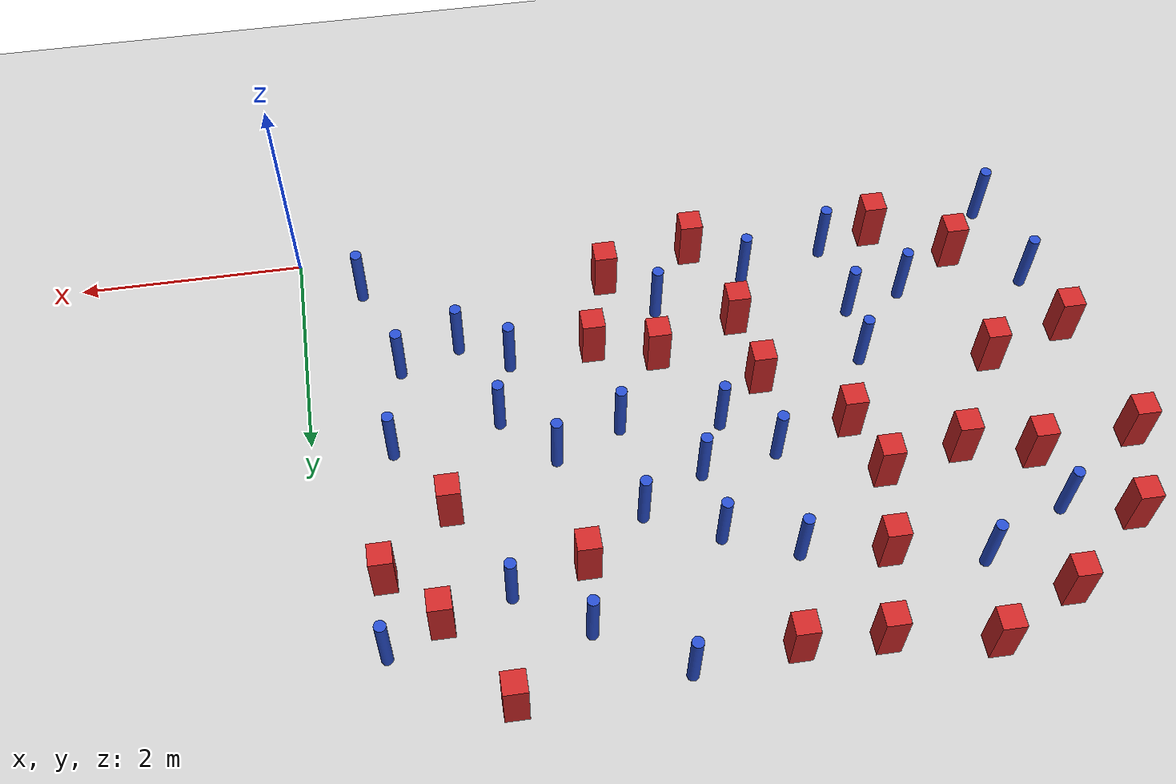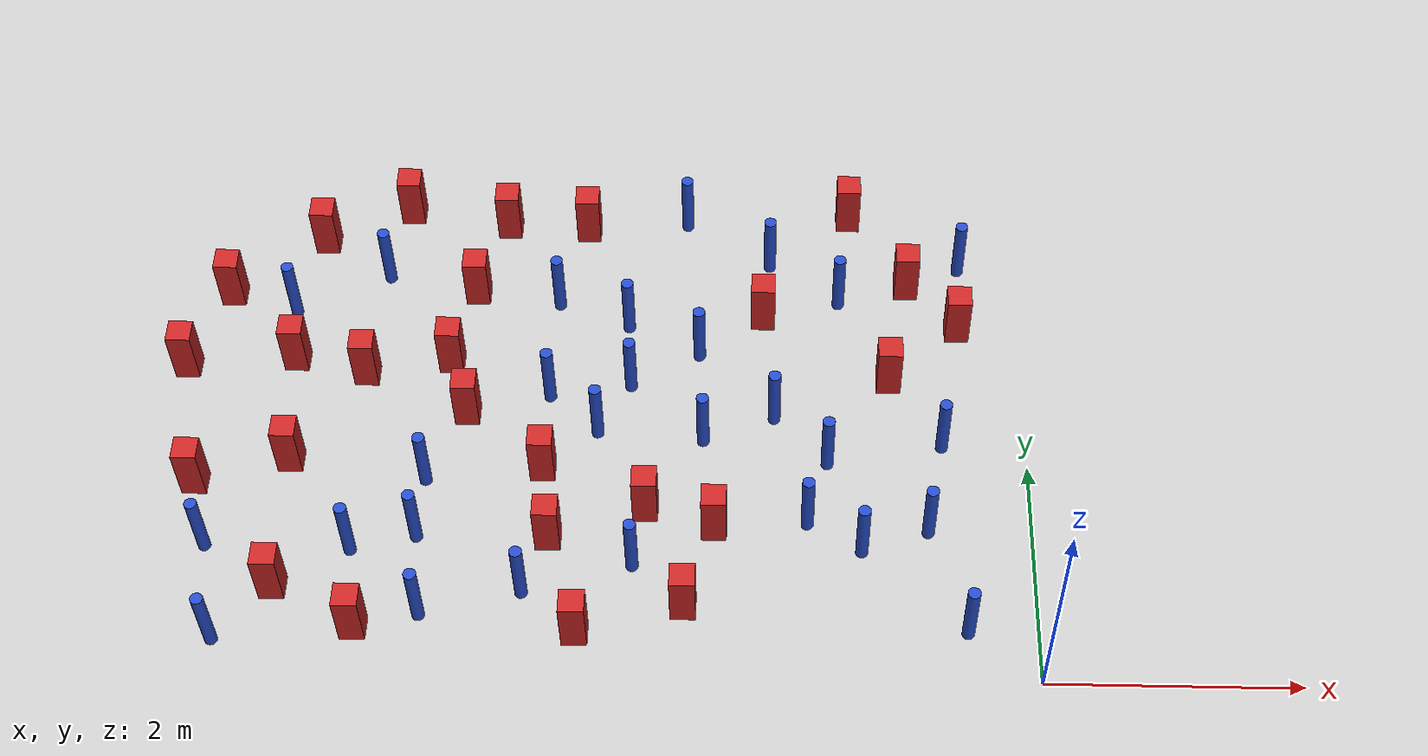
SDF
<sdf version="1.6">
 <world name="default">
  <model name="ground_plane">
   <static>1</static>
   <link name="link">
    <collision name="collision">
     <geometry><plane><normal>0 0 1</normal><size>100 100</size></plane></geometry>
     <surface><friction><ode><mu>100</mu><mu2>50</mu2></ode></friction></surface>
    </collision>
    <visual name="visual">
     <cast_shadows>0</cast_shadows>
     <geometry><plane><normal>0 0 1</normal><size>100 100</size></plane></geometry>
     <material>
      <ambient>1.0 1.0 1.0 1.0</ambient>
      <diffuse>0.8 0.8 0.8 1.0</diffuse>
      <specular>0.01 0.01 0.01 1.000000</specular>
     </material>
    </visual>
   </link>
  </model>
  <model name="pole_obstacle17">
   <static>true</static>
   <pose>-2.11424176353 4.09696493338 -3.09024884793e-07 -7.19054271912e-07 -2.11315075134e-07 -1.93935509266e-07</pose>
   <link name="link">
    <pose>0 0 0.3 0 -0 0</pose>
    <inertial>
     <mass>1</mass>
     <inertia><ixx>0.145833</ixx><ixy>0</ixy><ixz>0</ixz><iyy>0.145833</iyy><iyz>0</iyz><izz>0.125</izz></inertia>
    </inertial>
    <collision name="collision">
     <geometry><cylinder><radius>0.05</radius><length>.6</length></cylinder></geometry>
    </collision>
    <visual name="visual">
     <geometry><cylinder><radius>0.05</radius><length>.6</length></cylinder></geometry>
     <material>
      <script><name>Gazebo/Blue</name><uri>file://media/materials/scripts/gazebo.material</uri></script>
     </material>
    </visual>
   </link>
  </model>
  <model name="pole_obstacle18">
   <static>true</static>
   <pose>-2.83512441584 4.55504010034 -3.09024884793e-07 -7.19054271912e-07 -2.11315075134e-07 -1.93935509266e-07</pose>
   <link name="link">
    <pose>0 0 0.3 0 -0 0</pose>
    <inertial>
     <mass>1</mass>
     <inertia><ixx>0.145833</ixx><ixy>0</ixy><ixz>0</ixz><iyy>0.145833</iyy><iyz>0</iyz><izz>0.125</izz></inertia>
    </inertial>
    <collision name="collision">
     <geometry><cylinder><radius>0.05</radius><length>.6</length></cylinder></geometry>
    </collision>
    <visual name="visual">
     <geometry><cylinder><radius>0.05</radius><length>.6</length></cylinder></geometry>
     <material>
      <script><name>Gazebo/Blue</name><uri>file://media/materials/scripts/gazebo.material</uri></script>
     </material>
    </visual>
   </link>
  </model>
  <model name="square_post_obstacle19">
   <static>true</static>
   <pose>-4.39326293631 4.49769236264 -4.36207812815e-07 3.75137919937e-06 9.77721102514e-07 2.47381364184e-05</pose>
   <link name="link">
    <pose>0 0 0.25 0 -0 0</pose>
    <inertial>
     <mass>100</mass>
     <inertia>
      <ixx>0.166667</ixx>
      <ixy>0</ixy>
      <ixz>0</ixz>
      <iyy>0.166667</iyy>
      <iyz>0</iyz>
      <izz>0.166667</izz>
     </inertia>
    </inertial>
    <collision name="collision"><geometry><box><size>.2 .2 .5</size></box></geometry></collision>
    <visual name="visual">
     <geometry><box><size>.2 .2 .5</size></box></geometry>
     <material>
      <script><name>Gazebo/Red</name><uri>file://media/materials/scripts/gazebo.material</uri></script>
     </material>
    </visual>
   </link>
  </model>
  <model name="pole_obstacle31">
   <static>true</static>
   <pose>-2.69610317253 3.11011496474 -3.09024884793e-07 -7.19054271912e-07 -2.11315075144e-07 -1.93935509271e-07</pose>
   <link name="link">
    <pose>0 0 0.3 0 -0 0</pose>
    <inertial>
     <mass>1</mass>
     <inertia><ixx>0.145833</ixx><ixy>0</ixy><ixz>0</ixz><iyy>0.145833</iyy><iyz>0</iyz><izz>0.125</izz></inertia>
    </inertial>
    <collision name="collision">
     <geometry><cylinder><radius>0.05</radius><length>.6</length></cylinder></geometry>
    </collision>
    <visual name="visual">
     <geometry><cylinder><radius>0.05</radius><length>.6</length></cylinder></geometry>
     <material>
      <script><name>Gazebo/Blue</name><uri>file://media/materials/scripts/gazebo.material</uri></script>
     </material>
    </visual>
   </link>
  </model>
  <model name="pole_obstacle34">
   <static>true</static>
   <pose>-3.51070691331 2.298198273 -3.09024884793e-07 -7.19054271912e-07 -2.11315075128e-07 -1.93935509262e-07</pose>
   <link name="link">
    <pose>0 0 0.3 0 -0 0</pose>
    <inertial>
     <mass>1</mass>
     <inertia><ixx>0.145833</ixx><ixy>0</ixy><ixz>0</ixz><iyy>0.145833</iyy><iyz>0</iyz><izz>0.125</izz></inertia>
    </inertial>
    <collision name="collision">
     <geometry><cylinder><radius>0.05</radius><length>.6</length></cylinder></geometry>
    </collision>
    <visual name="visual">
     <geometry><cylinder><radius>0.05</radius><length>.6</length></cylinder></geometry>
     <material>
      <script><name>Gazebo/Blue</name><uri>file://media/materials/scripts/gazebo.material</uri></script>
     </material>
    </visual>
   </link>
  </model>
  <model name="pole_obstacle35">
   <static>true</static>
   <pose>-4.90083163983 1.25276885339 -3.09024884793e-07 -7.19054271912e-07 -2.11315075124e-07 -1.93935509261e-07</pose>
   <link name="link">
    <pose>0 0 0.3 0 -0 0</pose>
    <inertial>
     <mass>1</mass>
     <inertia><ixx>0.145833</ixx><ixy>0</ixy><ixz>0</ixz><iyy>0.145833</iyy><iyz>0</iyz><izz>0.125</izz></inertia>
    </inertial>
    <collision name="collision">
     <geometry><cylinder><radius>0.05</radius><length>.6</length></cylinder></geometry>
    </collision>
    <visual name="visual">
     <geometry><cylinder><radius>0.05</radius><length>.6</length></cylinder></geometry>
     <material>
      <script><name>Gazebo/Blue</name><uri>file://media/materials/scripts/gazebo.material</uri></script>
     </material>
    </visual>
   </link>
  </model>
  <model name="pole_obstacle37">
   <static>true</static>
   <pose>-5.39097829747 3.92004112847 -3.09024884793e-07 -7.19054271912e-07 -2.11315075144e-07 -1.93935509269e-07</pose>
   <link name="link">
    <pose>0 0 0.3 0 -0 0</pose>
    <inertial>
     <mass>1</mass>
     <inertia><ixx>0.145833</ixx><ixy>0</ixy><ixz>0</ixz><iyy>0.145833</iyy><iyz>0</iyz><izz>0.125</izz></inertia>
    </inertial>
    <collision name="collision">
     <geometry><cylinder><radius>0.05</radius><length>.6</length></cylinder></geometry>
    </collision>
    <visual name="visual">
     <geometry><cylinder><radius>0.05</radius><length>.6</length></cylinder></geometry>
     <material>
      <script><name>Gazebo/Blue</name><uri>file://media/materials/scripts/gazebo.material</uri></script>
     </material>
    </visual>
   </link>
  </model>
  <model name="square_post_obstacle35">
   <static>true</static>
   <pose>-5.30341119237 0.405289696028 -4.36207812815e-07 3.75137919937e-06 9.77721102514e-07 2.47381364184e-05</pose>
   <link name="link">
    <pose>0 0 0.25 0 -0 0</pose>
    <inertial>
     <mass>100</mass>
     <inertia>
      <ixx>0.166667</ixx>
      <ixy>0</ixy>
      <ixz>0</ixz>
      <iyy>0.166667</iyy>
      <iyz>0</iyz>
      <izz>0.166667</izz>
     </inertia>
    </inertial>
    <collision name="collision"><geometry><box><size>.2 .2 .5</size></box></geometry></collision>
    <visual name="visual">
     <geometry><box><size>.2 .2 .5</size></box></geometry>
     <material>
      <script><name>Gazebo/Red</name><uri>file://media/materials/scripts/gazebo.material</uri></script>
     </material>
    </visual>
   </link>
  </model>
  <model name="square_post_obstacle36">
   <static>true</static>
   <pose>-6.97807574838 2.92104542739 -4.36207812815e-07 3.75137919937e-06 9.77721102514e-07 2.47381364184e-05</pose>
   <link name="link">
    <pose>0 0 0.25 0 -0 0</pose>
    <inertial>
     <mass>100</mass>
     <inertia>
      <ixx>0.166667</ixx>
      <ixy>0</ixy>
      <ixz>0</ixz>
      <iyy>0.166667</iyy>
      <iyz>0</iyz>
      <izz>0.166667</izz>
     </inertia>
    </inertial>
    <collision name="collision"><geometry><box><size>.2 .2 .5</size></box></geometry></collision>
    <visual name="visual">
     <geometry><box><size>.2 .2 .5</size></box></geometry>
     <material>
      <script><name>Gazebo/Red</name><uri>file://media/materials/scripts/gazebo.material</uri></script>
     </material>
    </visual>
   </link>
  </model>
  <model name="square_post_obstacle37">
   <static>true</static>
   <pose>-3.6970249193 4.46838308018 -4.36207812815e-07 3.75137919937e-06 9.77721102514e-07 2.47381364184e-05</pose>
   <link name="link">
    <pose>0 0 0.25 0 -0 0</pose>
    <inertial>
     <mass>100</mass>
     <inertia>
      <ixx>0.166667</ixx>
      <ixy>0</ixy>
      <ixz>0</ixz>
      <iyy>0.166667</iyy>
      <iyz>0</iyz>
      <izz>0.166667</izz>
     </inertia>
    </inertial>
    <collision name="collision"><geometry><box><size>.2 .2 .5</size></box></geometry></collision>
    <visual name="visual">
     <geometry><box><size>.2 .2 .5</size></box></geometry>
     <material>
      <script><name>Gazebo/Red</name><uri>file://media/materials/scripts/gazebo.material</uri></script>
     </material>
    </visual>
   </link>
  </model>
  <model name="square_post_obstacle41">
   <static>true</static>
   <pose>-5.97331689547 4.29854929941 -4.36207812815e-07 3.75137919937e-06 9.77721102514e-07 2.47381364184e-05</pose>
   <link name="link">
    <pose>0 0 0.25 0 -0 0</pose>
    <inertial>
     <mass>100</mass>
     <inertia>
      <ixx>0.166667</ixx>
      <ixy>0</ixy>
      <ixz>0</ixz>
      <iyy>0.166667</iyy>
      <iyz>0</iyz>
      <izz>0.166667</izz>
     </inertia>
    </inertial>
    <collision name="collision"><geometry><box><size>.2 .2 .5</size></box></geometry></collision>
    <visual name="visual">
     <geometry><box><size>.2 .2 .5</size></box></geometry>
     <material>
      <script><name>Gazebo/Red</name><uri>file://media/materials/scripts/gazebo.material</uri></script>
     </material>
    </visual>
   </link>
  </model>
  <model name="pole_obstacle59">
   <static>true</static>
   <pose>-0.491025164945 4.07492403216 -3.09024884793e-07 -7.19054271912e-07 -2.11315075131e-07 -1.93935509262e-07</pose>
   <link name="link">
    <pose>0 0 0.3 0 -0 0</pose>
    <inertial>
     <mass>1</mass>
     <inertia><ixx>0.145833</ixx><ixy>0</ixy><ixz>0</ixz><iyy>0.145833</iyy><iyz>0</iyz><izz>0.125</izz></inertia>
    </inertial>
    <collision name="collision">
     <geometry><cylinder><radius>0.05</radius><length>.6</length></cylinder></geometry>
    </collision>
    <visual name="visual">
     <geometry><cylinder><radius>0.05</radius><length>.6</length></cylinder></geometry>
     <material>
      <script><name>Gazebo/Blue</name><uri>file://media/materials/scripts/gazebo.material</uri></script>
     </material>
    </visual>
   </link>
  </model>
  <model name="pole_obstacle60">
   <static>true</static>
   <pose>-0.549297014707 0.432347447773 -3.09024884793e-07 -7.19054271912e-07 -2.11315075125e-07 -1.9393550926e-07</pose>
   <link name="link">
    <pose>0 0 0.3 0 -0 0</pose>
    <inertial>
     <mass>1</mass>
     <inertia><ixx>0.145833</ixx><ixy>0</ixy><ixz>0</ixz><iyy>0.145833</iyy><iyz>0</iyz><izz>0.125</izz></inertia>
    </inertial>
    <collision name="collision">
     <geometry><cylinder><radius>0.05</radius><length>.6</length></cylinder></geometry>
    </collision>
    <visual name="visual">
     <geometry><cylinder><radius>0.05</radius><length>.6</length></cylinder></geometry>
     <material>
      <script><name>Gazebo/Blue</name><uri>file://media/materials/scripts/gazebo.material</uri></script>
     </material>
    </visual>
   </link>
  </model>
  <model name="square_post_obstacle52">
   <static>true</static>
   <pose>-5.46980925353 2.86095287135 -4.36207812815e-07 3.75137919937e-06 9.77721102514e-07 2.47381364184e-05</pose>
   <link name="link">
    <pose>0 0 0.25 0 -0 0</pose>
    <inertial>
     <mass>100</mass>
     <inertia>
      <ixx>0.166667</ixx>
      <ixy>0</ixy>
      <ixz>0</ixz>
      <iyy>0.166667</iyy>
      <iyz>0</iyz>
      <izz>0.166667</izz>
     </inertia>
    </inertial>
    <collision name="collision"><geometry><box><size>.2 .2 .5</size></box></geometry></collision>
    <visual name="visual">
     <geometry><box><size>.2 .2 .5</size></box></geometry>
     <material>
      <script><name>Gazebo/Red</name><uri>file://media/materials/scripts/gazebo.material</uri></script>
     </material>
    </visual>
   </link>
  </model>
  <model name="pole_obstacle72">
   <static>true</static>
   <pose>-3.30058762887 3.40463469407 -3.09024884793e-07 -7.19054271912e-07 -2.11315075128e-07 -1.93935509262e-07</pose>
   <link name="link">
    <pose>0 0 0.3 0 -0 0</pose>
    <inertial>
     <mass>1</mass>
     <inertia><ixx>0.145833</ixx><ixy>0</ixy><ixz>0</ixz><iyy>0.145833</iyy><iyz>0</iyz><izz>0.125</izz></inertia>
    </inertial>
    <collision name="collision">
     <geometry><cylinder><radius>0.05</radius><length>.6</length></cylinder></geometry>
    </collision>
    <visual name="visual">
     <geometry><cylinder><radius>0.05</radius><length>.6</length></cylinder></geometry>
     <material>
      <script><name>Gazebo/Blue</name><uri>file://media/materials/scripts/gazebo.material</uri></script>
     </material>
    </visual>
   </link>
  </model>
  <model name="square_post_obstacle66">
   <static>true</static>
   <pose>-3.58869524338 0.378281569708 -4.36207812815e-07 3.75137919937e-06 9.77721102514e-07 2.47381364184e-05</pose>
   <link name="link">
    <pose>0 0 0.25 0 -0 0</pose>
    <inertial>
     <mass>100</mass>
     <inertia>
      <ixx>0.166667</ixx>
      <ixy>0</ixy>
      <ixz>0</ixz>
      <iyy>0.166667</iyy>
      <iyz>0</iyz>
      <izz>0.166667</izz>
     </inertia>
    </inertial>
    <collision name="collision"><geometry><box><size>.2 .2 .5</size></box></geometry></collision>
    <visual name="visual">
     <geometry><box><size>.2 .2 .5</size></box></geometry>
     <material>
      <script><name>Gazebo/Red</name><uri>file://media/materials/scripts/gazebo.material</uri></script>
     </material>
    </visual>
   </link>
  </model>
  <model name="square_post_obstacle67">
   <static>true</static>
   <pose>-6.70891041462 3.70475814565 -4.36207812815e-07 3.75137919937e-06 9.77721102514e-07 2.47381364184e-05</pose>
   <link name="link">
    <pose>0 0 0.25 0 -0 0</pose>
    <inertial>
     <mass>100</mass>
     <inertia>
      <ixx>0.166667</ixx>
      <ixy>0</ixy>
      <ixz>0</ixz>
      <iyy>0.166667</iyy>
      <iyz>0</iyz>
      <izz>0.166667</izz>
     </inertia>
    </inertial>
    <collision name="collision"><geometry><box><size>.2 .2 .5</size></box></geometry></collision>
    <visual name="visual">
     <geometry><box><size>.2 .2 .5</size></box></geometry>
     <material>
      <script><name>Gazebo/Red</name><uri>file://media/materials/scripts/gazebo.material</uri></script>
     </material>
    </visual>
   </link>
  </model>
  <model name="pole_obstacle80">
   <static>true</static>
   <pose>-4.8139269531 0.531093934996 -3.09024884793e-07 -7.19054271912e-07 -2.11315075121e-07 -1.93935509259e-07</pose>
   <link name="link">
    <pose>0 0 0.3 0 -0 0</pose>
    <inertial>
     <mass>1</mass>
     <inertia><ixx>0.145833</ixx><ixy>0</ixy><ixz>0</ixz><iyy>0.145833</iyy><iyz>0</iyz><izz>0.125</izz></inertia>
    </inertial>
    <collision name="collision">
     <geometry><cylinder><radius>0.05</radius><length>.6</length></cylinder></geometry>
    </collision>
    <visual name="visual">
     <geometry><cylinder><radius>0.05</radius><length>.6</length></cylinder></geometry>
     <material>
      <script><name>Gazebo/Blue</name><uri>file://media/materials/scripts/gazebo.material</uri></script>
     </material>
    </visual>
   </link>
  </model>
  <model name="square_post_obstacle69">
   <static>true</static>
   <pose>-0.527017540803 3.40190027511 -4.36207812815e-07 3.75137919937e-06 9.77721102514e-07 2.47381364184e-05</pose>
   <link name="link">
    <pose>0 0 0.25 0 -0 0</pose>
    <inertial>
     <mass>100</mass>
     <inertia>
      <ixx>0.166667</ixx>
      <ixy>0</ixy>
      <ixz>0</ixz>
      <iyy>0.166667</iyy>
      <iyz>0</iyz>
      <izz>0.166667</izz>
     </inertia>
    </inertial>
    <collision name="collision"><geometry><box><size>.2 .2 .5</size></box></geometry></collision>
    <visual name="visual">
     <geometry><box><size>.2 .2 .5</size></box></geometry>
     <material>
      <script><name>Gazebo/Red</name><uri>file://media/materials/scripts/gazebo.material</uri></script>
     </material>
    </visual>
   </link>
  </model>
  <model name="square_post_obstacle74">
   <static>true</static>
   <pose>-3.84980976872 1.24711960691 -4.36207812815e-07 3.75137919937e-06 9.77721102514e-07 2.47381364184e-05</pose>
   <link name="link">
    <pose>0 0 0.25 0 -0 0</pose>
    <inertial>
     <mass>100</mass>
     <inertia>
      <ixx>0.166667</ixx>
      <ixy>0</ixy>
      <ixz>0</ixz>
      <iyy>0.166667</iyy>
      <iyz>0</iyz>
      <izz>0.166667</izz>
     </inertia>
    </inertial>
    <collision name="collision"><geometry><box><size>.2 .2 .5</size></box></geometry></collision>
    <visual name="visual">
     <geometry><box><size>.2 .2 .5</size></box></geometry>
     <material>
      <script><name>Gazebo/Red</name><uri>file://media/materials/scripts/gazebo.material</uri></script>
     </material>
    </visual>
   </link>
  </model>
  <model name="square_post_obstacle81">
   <static>true</static>
   <pose>-1.43685024188 4.62553067997 -4.36207812815e-07 3.75137919937e-06 9.77721102514e-07 2.47381364184e-05</pose>
   <link name="link">
    <pose>0 0 0.25 0 -0 0</pose>
    <inertial>
     <mass>100</mass>
     <inertia>
      <ixx>0.166667</ixx>
      <ixy>0</ixy>
      <ixz>0</ixz>
      <iyy>0.166667</iyy>
      <iyz>0</iyz>
      <izz>0.166667</izz>
     </inertia>
    </inertial>
    <collision name="collision"><geometry><box><size>.2 .2 .5</size></box></geometry></collision>
    <visual name="visual">
     <geometry><box><size>.2 .2 .5</size></box></geometry>
     <material>
      <script><name>Gazebo/Red</name><uri>file://media/materials/scripts/gazebo.material</uri></script>
     </material>
    </visual>
   </link>
  </model>
  <model name="square_post_obstacle82">
   <static>true</static>
   <pose>-2.16695875276 3.50848094516 -4.36207812815e-07 3.75137919937e-06 9.77721102514e-07 2.47381364184e-05</pose>
   <link name="link">
    <pose>0 0 0.25 0 -0 0</pose>
    <inertial>
     <mass>100</mass>
     <inertia>
      <ixx>0.166667</ixx>
      <ixy>0</ixy>
      <ixz>0</ixz>
      <iyy>0.166667</iyy>
      <iyz>0</iyz>
      <izz>0.166667</izz>
     </inertia>
    </inertial>
    <collision name="collision"><geometry><box><size>.2 .2 .5</size></box></geometry></collision>
    <visual name="visual">
     <geometry><box><size>.2 .2 .5</size></box></geometry>
     <material>
      <script><name>Gazebo/Red</name><uri>file://media/materials/scripts/gazebo.material</uri></script>
     </material>
    </visual>
   </link>
  </model>
  <model name="pole_obstacle100">
   <static>true</static>
   <pose>-5.41390032243 1.12029209226 -3.09024884793e-07 -7.19054271912e-07 -2.11315075124e-07 -1.93935509261e-07</pose>
   <link name="link">
    <pose>0 0 0.3 0 -0 0</pose>
    <inertial>
     <mass>1</mass>
     <inertia><ixx>0.145833</ixx><ixy>0</ixy><ixz>0</ixz><iyy>0.145833</iyy><iyz>0</iyz><izz>0.125</izz></inertia>
    </inertial>
    <collision name="collision">
     <geometry><cylinder><radius>0.05</radius><length>.6</length></cylinder></geometry>
    </collision>
    <visual name="visual">
     <geometry><cylinder><radius>0.05</radius><length>.6</length></cylinder></geometry>
     <material>
      <script><name>Gazebo/Blue</name><uri>file://media/materials/scripts/gazebo.material</uri></script>
     </material>
    </visual>
   </link>
  </model>
  <model name="pole_obstacle102">
   <static>true</static>
   <pose>-1.79175091943 1.42239391181 -3.09024884793e-07 -7.19054271912e-07 -2.1131507513e-07 -1.93935509263e-07</pose>
   <link name="link">
    <pose>0 0 0.3 0 -0 0</pose>
    <inertial>
     <mass>1</mass>
     <inertia><ixx>0.145833</ixx><ixy>0</ixy><ixz>0</ixz><iyy>0.145833</iyy><iyz>0</iyz><izz>0.125</izz></inertia>
    </inertial>
    <collision name="collision">
     <geometry><cylinder><radius>0.05</radius><length>.6</length></cylinder></geometry>
    </collision>
    <visual name="visual">
     <geometry><cylinder><radius>0.05</radius><length>.6</length></cylinder></geometry>
     <material>
      <script><name>Gazebo/Blue</name><uri>file://media/materials/scripts/gazebo.material</uri></script>
     </material>
    </visual>
   </link>
  </model>
  <model name="square_post_obstacle99">
   <static>true</static>
   <pose>-4.59366643803 2.46890975301 -4.36207812815e-07 3.75137919937e-06 9.77721102514e-07 2.47381364184e-05</pose>
   <link name="link">
    <pose>0 0 0.25 0 -0 0</pose>
    <inertial>
     <mass>100</mass>
     <inertia>
      <ixx>0.166667</ixx>
      <ixy>0</ixy>
      <ixz>0</ixz>
      <iyy>0.166667</iyy>
      <iyz>0</iyz>
      <izz>0.166667</izz>
     </inertia>
    </inertial>
    <collision name="collision"><geometry><box><size>.2 .2 .5</size></box></geometry></collision>
    <visual name="visual">
     <geometry><box><size>.2 .2 .5</size></box></geometry>
     <material>
      <script><name>Gazebo/Red</name><uri>file://media/materials/scripts/gazebo.material</uri></script>
     </material>
    </visual>
   </link>
  </model>
  <model name="pole_obstacle107">
   <static>true</static>
   <pose>-6.38839063313 0.285977443228 -3.09024884793e-07 -7.19054271912e-07 -2.11315075135e-07 -1.93935509265e-07</pose>
   <link name="link">
    <pose>0 0 0.3 0 -0 0</pose>
    <inertial>
     <mass>1</mass>
     <inertia><ixx>0.145833</ixx><ixy>0</ixy><ixz>0</ixz><iyy>0.145833</iyy><iyz>0</iyz><izz>0.125</izz></inertia>
    </inertial>
    <collision name="collision">
     <geometry><cylinder><radius>0.05</radius><length>.6</length></cylinder></geometry>
    </collision>
    <visual name="visual">
     <geometry><cylinder><radius>0.05</radius><length>.6</length></cylinder></geometry>
     <material>
      <script><name>Gazebo/Blue</name><uri>file://media/materials/scripts/gazebo.material</uri></script>
     </material>
    </visual>
   </link>
  </model>
  <model name="square_post_obstacle107">
   <static>true</static>
   <pose>-4.77106526625 3.00334079151 -4.36207812815e-07 3.75137919937e-06 9.77721102514e-07 2.47381364184e-05</pose>
   <link name="link">
    <pose>0 0 0.25 0 -0 0</pose>
    <inertial>
     <mass>100</mass>
     <inertia>
      <ixx>0.166667</ixx>
      <ixy>0</ixy>
      <ixz>0</ixz>
      <iyy>0.166667</iyy>
      <iyz>0</iyz>
      <izz>0.166667</izz>
     </inertia>
    </inertial>
    <collision name="collision"><geometry><box><size>.2 .2 .5</size></box></geometry></collision>
    <visual name="visual">
     <geometry><box><size>.2 .2 .5</size></box></geometry>
     <material>
      <script><name>Gazebo/Red</name><uri>file://media/materials/scripts/gazebo.material</uri></script>
     </material>
    </visual>
   </link>
  </model>
  <model name="pole_obstacle118">
   <static>true</static>
   <pose>-4.87894589652 1.80023138149 -3.09024884793e-07 -7.19054271912e-07 -2.11315075124e-07 -1.93935509261e-07</pose>
   <link name="link">
    <pose>0 0 0.3 0 -0 0</pose>
    <inertial>
     <mass>1</mass>
     <inertia><ixx>0.145833</ixx><ixy>0</ixy><ixz>0</ixz><iyy>0.145833</iyy><iyz>0</iyz><izz>0.125</izz></inertia>
    </inertial>
    <collision name="collision">
     <geometry><cylinder><radius>0.05</radius><length>.6</length></cylinder></geometry>
    </collision>
    <visual name="visual">
     <geometry><cylinder><radius>0.05</radius><length>.6</length></cylinder></geometry>
     <material>
      <script><name>Gazebo/Blue</name><uri>file://media/materials/scripts/gazebo.material</uri></script>
     </material>
    </visual>
   </link>
  </model>
  <model name="pole_obstacle120">
   <static>true</static>
   <pose>-3.25844790615 2.7796812707 -3.09024884793e-07 -7.19054271912e-07 -2.11315075128e-07 -1.93935509262e-07</pose>
   <link name="link">
    <pose>0 0 0.3 0 -0 0</pose>
    <inertial>
     <mass>1</mass>
     <inertia><ixx>0.145833</ixx><ixy>0</ixy><ixz>0</ixz><iyy>0.145833</iyy><iyz>0</iyz><izz>0.125</izz></inertia>
    </inertial>
    <collision name="collision">
     <geometry><cylinder><radius>0.05</radius><length>.6</length></cylinder></geometry>
    </collision>
    <visual name="visual">
     <geometry><cylinder><radius>0.05</radius><length>.6</length></cylinder></geometry>
     <material>
      <script><name>Gazebo/Blue</name><uri>file://media/materials/scripts/gazebo.material</uri></script>
     </material>
    </visual>
   </link>
  </model>
  <model name="pole_obstacle122">
   <static>true</static>
   <pose>-1.52689319073 3.6893847607 -3.09024884793e-07 -7.19054271912e-07 -2.11315075132e-07 -1.93935509263e-07</pose>
   <link name="link">
    <pose>0 0 0.3 0 -0 0</pose>
    <inertial>
     <mass>1</mass>
     <inertia><ixx>0.145833</ixx><ixy>0</ixy><ixz>0</ixz><iyy>0.145833</iyy><iyz>0</iyz><izz>0.125</izz></inertia>
    </inertial>
    <collision name="collision">
     <geometry><cylinder><radius>0.05</radius><length>.6</length></cylinder></geometry>
    </collision>
    <visual name="visual">
     <geometry><cylinder><radius>0.05</radius><length>.6</length></cylinder></geometry>
     <material>
      <script><name>Gazebo/Blue</name><uri>file://media/materials/scripts/gazebo.material</uri></script>
     </material>
    </visual>
   </link>
  </model>
  <model name="square_post_obstacle122">
   <static>true</static>
   <pose>-3.93506811418 1.91324481834 -4.36207812815e-07 3.75137919937e-06 9.77721102514e-07 2.47381364184e-05</pose>
   <link name="link">
    <pose>0 0 0.25 0 -0 0</pose>
    <inertial>
     <mass>100</mass>
     <inertia>
      <ixx>0.166667</ixx>
      <ixy>0</ixy>
      <ixz>0</ixz>
      <iyy>0.166667</iyy>
      <iyz>0</iyz>
      <izz>0.166667</izz>
     </inertia>
    </inertial>
    <collision name="collision"><geometry><box><size>.2 .2 .5</size></box></geometry></collision>
    <visual name="visual">
     <geometry><box><size>.2 .2 .5</size></box></geometry>
     <material>
      <script><name>Gazebo/Red</name><uri>file://media/materials/scripts/gazebo.material</uri></script>
     </material>
    </visual>
   </link>
  </model>
  <model name="pole_obstacle132">
   <static>true</static>
   <pose>-2.64384491936 2.22567043138 -3.09024884793e-07 -7.19054271912e-07 -2.11315075144e-07 -1.93935509271e-07</pose>
   <link name="link">
    <pose>0 0 0.3 0 -0 0</pose>
    <inertial>
     <mass>1</mass>
     <inertia><ixx>0.145833</ixx><ixy>0</ixy><ixz>0</ixz><iyy>0.145833</iyy><iyz>0</iyz><izz>0.125</izz></inertia>
    </inertial>
    <collision name="collision">
     <geometry><cylinder><radius>0.05</radius><length>.6</length></cylinder></geometry>
    </collision>
    <visual name="visual">
     <geometry><cylinder><radius>0.05</radius><length>.6</length></cylinder></geometry>
     <material>
      <script><name>Gazebo/Blue</name><uri>file://media/materials/scripts/gazebo.material</uri></script>
     </material>
    </visual>
   </link>
  </model>
  <model name="pole_obstacle141">
   <static>true</static>
   <pose>-3.90451381689 3.64379075644 -3.09024884793e-07 -7.19054271912e-07 -2.11315075144e-07 -1.93935509271e-07</pose>
   <link name="link">
    <pose>0 0 0.3 0 -0 0</pose>
    <inertial>
     <mass>1</mass>
     <inertia><ixx>0.145833</ixx><ixy>0</ixy><ixz>0</ixz><iyy>0.145833</iyy><iyz>0</iyz><izz>0.125</izz></inertia>
    </inertial>
    <collision name="collision">
     <geometry><cylinder><radius>0.05</radius><length>.6</length></cylinder></geometry>
    </collision>
    <visual name="visual">
     <geometry><cylinder><radius>0.05</radius><length>.6</length></cylinder></geometry>
     <material>
      <script><name>Gazebo/Blue</name><uri>file://media/materials/scripts/gazebo.material</uri></script>
     </material>
    </visual>
   </link>
  </model>
  <model name="square_post_obstacle141">
   <static>true</static>
   <pose>-2.7586760532 0.624024293536 -4.36207812815e-07 3.75137919937e-06 9.77721102514e-07 2.47381364184e-05</pose>
   <link name="link">
    <pose>0 0 0.25 0 -0 0</pose>
    <inertial>
     <mass>100</mass>
     <inertia>
      <ixx>0.166667</ixx>
      <ixy>0</ixy>
      <ixz>0</ixz>
      <iyy>0.166667</iyy>
      <iyz>0</iyz>
      <izz>0.166667</izz>
     </inertia>
    </inertial>
    <collision name="collision"><geometry><box><size>.2 .2 .5</size></box></geometry></collision>
    <visual name="visual">
     <geometry><box><size>.2 .2 .5</size></box></geometry>
     <material>
      <script><name>Gazebo/Red</name><uri>file://media/materials/scripts/gazebo.material</uri></script>
     </material>
    </visual>
   </link>
  </model>
  <model name="pole_obstacle151">
   <static>true</static>
   <pose>-3.92508767404 2.66172770245 -3.09024884793e-07 -7.19054271912e-07 -2.11315075128e-07 -1.93935509262e-07</pose>
   <link name="link">
    <pose>0 0 0.3 0 -0 0</pose>
    <inertial>
     <mass>1</mass>
     <inertia><ixx>0.145833</ixx><ixy>0</ixy><ixz>0</ixz><iyy>0.145833</iyy><iyz>0</iyz><izz>0.125</izz></inertia>
    </inertial>
    <collision name="collision">
     <geometry><cylinder><radius>0.05</radius><length>.6</length></cylinder></geometry>
    </collision>
    <visual name="visual">
     <geometry><cylinder><radius>0.05</radius><length>.6</length></cylinder></geometry>
     <material>
      <script><name>Gazebo/Blue</name><uri>file://media/materials/scripts/gazebo.material</uri></script>
     </material>
    </visual>
   </link>
  </model>
  <model name="pole_obstacle154">
   <static>true</static>
   <pose>-1.6301075264 2.011503036 -3.09024884793e-07 -7.19054271912e-07 -2.11315075143e-07 -1.93935509269e-07</pose>
   <link name="link">
    <pose>0 0 0.3 0 -0 0</pose>
    <inertial>
     <mass>1</mass>
     <inertia><ixx>0.145833</ixx><ixy>0</ixy><ixz>0</ixz><iyy>0.145833</iyy><iyz>0</iyz><izz>0.125</izz></inertia>
    </inertial>
    <collision name="collision">
     <geometry><cylinder><radius>0.05</radius><length>.6</length></cylinder></geometry>
    </collision>
    <visual name="visual">
     <geometry><cylinder><radius>0.05</radius><length>.6</length></cylinder></geometry>
     <material>
      <script><name>Gazebo/Blue</name><uri>file://media/materials/scripts/gazebo.material</uri></script>
     </material>
    </visual>
   </link>
  </model>
  <model name="pole_obstacle156">
   <static>true</static>
   <pose>-0.82800512863 1.35570340497 -3.09024884793e-07 -7.19054271912e-07 -2.11315075135e-07 -1.93935509266e-07</pose>
   <link name="link">
    <pose>0 0 0.3 0 -0 0</pose>
    <inertial>
     <mass>1</mass>
     <inertia><ixx>0.145833</ixx><ixy>0</ixy><ixz>0</ixz><iyy>0.145833</iyy><iyz>0</iyz><izz>0.125</izz></inertia>
    </inertial>
    <collision name="collision">
     <geometry><cylinder><radius>0.05</radius><length>.6</length></cylinder></geometry>
    </collision>
    <visual name="visual">
     <geometry><cylinder><radius>0.05</radius><length>.6</length></cylinder></geometry>
     <material>
      <script><name>Gazebo/Blue</name><uri>file://media/materials/scripts/gazebo.material</uri></script>
     </material>
    </visual>
   </link>
  </model>
  <model name="pole_obstacle159">
   <static>true</static>
   <pose>-0.693061319853 2.19326967466 -3.09024884793e-07 -7.19054271912e-07 -2.11315075129e-07 -1.93935509263e-07</pose>
   <link name="link">
    <pose>0 0 0.3 0 -0 0</pose>
    <inertial>
     <mass>1</mass>
     <inertia><ixx>0.145833</ixx><ixy>0</ixy><ixz>0</ixz><iyy>0.145833</iyy><iyz>0</iyz><izz>0.125</izz></inertia>
    </inertial>
    <collision name="collision">
     <geometry><cylinder><radius>0.05</radius><length>.6</length></cylinder></geometry>
    </collision>
    <visual name="visual">
     <geometry><cylinder><radius>0.05</radius><length>.6</length></cylinder></geometry>
     <material>
      <script><name>Gazebo/Blue</name><uri>file://media/materials/scripts/gazebo.material</uri></script>
     </material>
    </visual>
   </link>
  </model>
  <model name="square_post_obstacle157">
   <static>true</static>
   <pose>-2.53472470979 1.36246286178 -4.36207812815e-07 3.75137919937e-06 9.77721102514e-07 2.47381364184e-05</pose>
   <link name="link">
    <pose>0 0 0.25 0 -0 0</pose>
    <inertial>
     <mass>100</mass>
     <inertia>
      <ixx>0.166667</ixx>
      <ixy>0</ixy>
      <ixz>0</ixz>
      <iyy>0.166667</iyy>
      <iyz>0</iyz>
      <izz>0.166667</izz>
     </inertia>
    </inertial>
    <collision name="collision"><geometry><box><size>.2 .2 .5</size></box></geometry></collision>
    <visual name="visual">
     <geometry><box><size>.2 .2 .5</size></box></geometry>
     <material>
      <script><name>Gazebo/Red</name><uri>file://media/materials/scripts/gazebo.material</uri></script>
     </material>
    </visual>
   </link>
  </model>
  <model name="square_post_obstacle158">
   <static>true</static>
   <pose>-5.25840155336 4.65240648976 -4.36207812815e-07 3.75137919937e-06 9.77721102514e-07 2.47381364184e-05</pose>
   <link name="link">
    <pose>0 0 0.25 0 -0 0</pose>
    <inertial>
     <mass>100</mass>
     <inertia>
      <ixx>0.166667</ixx>
      <ixy>0</ixy>
      <ixz>0</ixz>
      <iyy>0.166667</iyy>
      <iyz>0</iyz>
      <izz>0.166667</izz>
     </inertia>
    </inertial>
    <collision name="collision"><geometry><box><size>.2 .2 .5</size></box></geometry></collision>
    <visual name="visual">
     <geometry><box><size>.2 .2 .5</size></box></geometry>
     <material>
      <script><name>Gazebo/Red</name><uri>file://media/materials/scripts/gazebo.material</uri></script>
     </material>
    </visual>
   </link>
  </model>
  <model name="pole_obstacle165">
   <static>true</static>
   <pose>-2.06476596773 2.46129439995 -3.09024884793e-07 -7.19054271912e-07 -2.11315075144e-07 -1.93935509271e-07</pose>
   <link name="link">
    <pose>0 0 0.3 0 -0 0</pose>
    <inertial>
     <mass>1</mass>
     <inertia><ixx>0.145833</ixx><ixy>0</ixy><ixz>0</ixz><iyy>0.145833</iyy><iyz>0</iyz><izz>0.125</izz></inertia>
    </inertial>
    <collision name="collision">
     <geometry><cylinder><radius>0.05</radius><length>.6</length></cylinder></geometry>
    </collision>
    <visual name="visual">
     <geometry><cylinder><radius>0.05</radius><length>.6</length></cylinder></geometry>
     <material>
      <script><name>Gazebo/Blue</name><uri>file://media/materials/scripts/gazebo.material</uri></script>
     </material>
    </visual>
   </link>
  </model>
  <model name="square_post_obstacle163">
   <static>true</static>
   <pose>-5.99114093729 1.97131441889 -4.36207812815e-07 3.75137919937e-06 9.77721102514e-07 2.47381364184e-05</pose>
   <link name="link">
    <pose>0 0 0.25 0 -0 0</pose>
    <inertial>
     <mass>100</mass>
     <inertia>
      <ixx>0.166667</ixx>
      <ixy>0</ixy>
      <ixz>0</ixz>
      <iyy>0.166667</iyy>
      <iyz>0</iyz>
      <izz>0.166667</izz>
     </inertia>
    </inertial>
    <collision name="collision"><geometry><box><size>.2 .2 .5</size></box></geometry></collision>
    <visual name="visual">
     <geometry><box><size>.2 .2 .5</size></box></geometry>
     <material>
      <script><name>Gazebo/Red</name><uri>file://media/materials/scripts/gazebo.material</uri></script>
     </material>
    </visual>
   </link>
  </model>
  <model name="pole_obstacle166">
   <static>true</static>
   <pose>-1.36070859333 1.16493207428 -3.09024884793e-07 -7.19054271912e-07 -2.1131507513e-07 -1.93935509263e-07</pose>
   <link name="link">
    <pose>0 0 0.3 0 -0 0</pose>
    <inertial>
     <mass>1</mass>
     <inertia><ixx>0.145833</ixx><ixy>0</ixy><ixz>0</ixz><iyy>0.145833</iyy><iyz>0</iyz><izz>0.125</izz></inertia>
    </inertial>
    <collision name="collision">
     <geometry><cylinder><radius>0.05</radius><length>.6</length></cylinder></geometry>
    </collision>
    <visual name="visual">
     <geometry><cylinder><radius>0.05</radius><length>.6</length></cylinder></geometry>
     <material>
      <script><name>Gazebo/Blue</name><uri>file://media/materials/scripts/gazebo.material</uri></script>
     </material>
    </visual>
   </link>
  </model>
  <model name="square_post_obstacle171">
   <static>true</static>
   <pose>-3.08809784847 1.53225481065 -4.36207812815e-07 3.75137919937e-06 9.77721102514e-07 2.47381364184e-05</pose>
   <link name="link">
    <pose>0 0 0.25 0 -0 0</pose>
    <inertial>
     <mass>100</mass>
     <inertia>
      <ixx>0.166667</ixx>
      <ixy>0</ixy>
      <ixz>0</ixz>
      <iyy>0.166667</iyy>
      <iyz>0</iyz>
      <izz>0.166667</izz>
     </inertia>
    </inertial>
    <collision name="collision"><geometry><box><size>.2 .2 .5</size></box></geometry></collision>
    <visual name="visual">
     <geometry><box><size>.2 .2 .5</size></box></geometry>
     <material>
      <script><name>Gazebo/Red</name><uri>file://media/materials/scripts/gazebo.material</uri></script>
     </material>
    </visual>
   </link>
  </model>
  <model name="pole_obstacle172">
   <static>true</static>
   <pose>-6.15395571457 3.5360325368 -3.09024884793e-07 -7.19054271912e-07 -2.11315075144e-07 -1.93935509269e-07</pose>
   <link name="link">
    <pose>0 0 0.3 0 -0 0</pose>
    <inertial>
     <mass>1</mass>
     <inertia><ixx>0.145833</ixx><ixy>0</ixy><ixz>0</ixz><iyy>0.145833</iyy><iyz>0</iyz><izz>0.125</izz></inertia>
    </inertial>
    <collision name="collision">
     <geometry><cylinder><radius>0.05</radius><length>.6</length></cylinder></geometry>
    </collision>
    <visual name="visual">
     <geometry><cylinder><radius>0.05</radius><length>.6</length></cylinder></geometry>
     <material>
      <script><name>Gazebo/Blue</name><uri>file://media/materials/scripts/gazebo.material</uri></script>
     </material>
    </visual>
   </link>
  </model>
  <model name="pole_obstacle175">
   <static>true</static>
   <pose>-3.17331631074 1.00751362667 -3.09024884848e-07 -7.19054271902e-07 -2.11315075202e-07 -1.93935509288e-07</pose>
   <link name="link">
    <pose>0 0 0.3 0 -0 0</pose>
    <inertial>
     <mass>1</mass>
     <inertia><ixx>0.145833</ixx><ixy>0</ixy><ixz>0</ixz><iyy>0.145833</iyy><iyz>0</iyz><izz>0.125</izz></inertia>
    </inertial>
    <collision name="collision">
     <geometry><cylinder><radius>0.05</radius><length>.6</length></cylinder></geometry>
    </collision>
    <visual name="visual">
     <geometry><cylinder><radius>0.05</radius><length>.6</length></cylinder></geometry>
     <material>
      <script><name>Gazebo/Blue</name><uri>file://media/materials/scripts/gazebo.material</uri></script>
     </material>
    </visual>
   </link>
  </model>
  <model name="pole_obstacle184">
   <static>true</static>
   <pose>-6.57409062765 1.14266552501 -3.09024884793e-07 -7.19054271912e-07 -2.11315075124e-07 -1.93935509261e-07</pose>
   <link name="link">
    <pose>0 0 0.3 0 -0 0</pose>
    <inertial>
     <mass>1</mass>
     <inertia><ixx>0.145833</ixx><ixy>0</ixy><ixz>0</ixz><iyy>0.145833</iyy><iyz>0</iyz><izz>0.125</izz></inertia>
    </inertial>
    <collision name="collision">
     <geometry><cylinder><radius>0.05</radius><length>.6</length></cylinder></geometry>
    </collision>
    <visual name="visual">
     <geometry><cylinder><radius>0.05</radius><length>.6</length></cylinder></geometry>
     <material>
      <script><name>Gazebo/Blue</name><uri>file://media/materials/scripts/gazebo.material</uri></script>
     </material>
    </visual>
   </link>
  </model>
  <model name="square_post_obstacle189">
   <static>true</static>
   <pose>-6.73854147478 1.74296064375 -4.36207812815e-07 3.75137919937e-06 9.77721102514e-07 2.47381364184e-05</pose>
   <link name="link">
    <pose>0 0 0.25 0 -0 0</pose>
    <inertial>
     <mass>100</mass>
     <inertia>
      <ixx>0.166667</ixx>
      <ixy>0</ixy>
      <ixz>0</ixz>
      <iyy>0.166667</iyy>
      <iyz>0</iyz>
      <izz>0.166667</izz>
     </inertia>
    </inertial>
    <collision name="collision"><geometry><box><size>.2 .2 .5</size></box></geometry></collision>
    <visual name="visual">
     <geometry><box><size>.2 .2 .5</size></box></geometry>
     <material>
      <script><name>Gazebo/Red</name><uri>file://media/materials/scripts/gazebo.material</uri></script>
     </material>
    </visual>
   </link>
  </model>
  <model name="square_post_obstacle193">
   <static>true</static>
   <pose>-0.947181990351 3.86164861976 -4.36207812815e-07 3.75137919937e-06 9.77721102514e-07 2.47381364184e-05</pose>
   <link name="link">
    <pose>0 0 0.25 0 -0 0</pose>
    <inertial>
     <mass>100</mass>
     <inertia>
      <ixx>0.166667</ixx>
      <ixy>0</ixy>
      <ixz>0</ixz>
      <iyy>0.166667</iyy>
      <iyz>0</iyz>
      <izz>0.166667</izz>
     </inertia>
    </inertial>
    <collision name="collision"><geometry><box><size>.2 .2 .5</size></box></geometry></collision>
    <visual name="visual">
     <geometry><box><size>.2 .2 .5</size></box></geometry>
     <material>
      <script><name>Gazebo/Red</name><uri>file://media/materials/scripts/gazebo.material</uri></script>
     </material>
    </visual>
   </link>
  </model>
  <model name="square_post_obstacle197">
   <static>true</static>
   <pose>-6.07434525106 3.00613917165 -4.36207812815e-07 3.75137919937e-06 9.77721102514e-07 2.47381364184e-05</pose>
   <link name="link">
    <pose>0 0 0.25 0 -0 0</pose>
    <inertial>
     <mass>100</mass>
     <inertia>
      <ixx>0.166667</ixx>
      <ixy>0</ixy>
      <ixz>0</ixz>
      <iyy>0.166667</iyy>
      <iyz>0</iyz>
      <izz>0.166667</izz>
     </inertia>
    </inertial>
    <collision name="collision"><geometry><box><size>.2 .2 .5</size></box></geometry></collision>
    <visual name="visual">
     <geometry><box><size>.2 .2 .5</size></box></geometry>
     <material>
      <script><name>Gazebo/Red</name><uri>file://media/materials/scripts/gazebo.material</uri></script>
     </material>
    </visual>
   </link>
  </model>
  <model name="square_post_obstacle204">
   <static>true</static>
   <pose>-4.61046946943 3.74652165862 -4.36207812815e-07 3.75137919937e-06 9.77721102514e-07 2.47381364184e-05</pose>
   <link name="link">
    <pose>0 0 0.25 0 -0 0</pose>
    <inertial>
     <mass>100</mass>
     <inertia>
      <ixx>0.166667</ixx>
      <ixy>0</ixy>
      <ixz>0</ixz>
      <iyy>0.166667</iyy>
      <iyz>0</iyz>
      <izz>0.166667</izz>
     </inertia>
    </inertial>
    <collision name="collision"><geometry><box><size>.2 .2 .5</size></box></geometry></collision>
    <visual name="visual">
     <geometry><box><size>.2 .2 .5</size></box></geometry>
     <material>
      <script><name>Gazebo/Red</name><uri>file://media/materials/scripts/gazebo.material</uri></script>
     </material>
    </visual>
   </link>
  </model>
  <model name="square_post_obstacle206">
   <static>true</static>
   <pose>-5.9763714824 0.761718634337 -4.36207812815e-07 3.75137919937e-06 9.77721102514e-07 2.47381364184e-05</pose>
   <link name="link">
    <pose>0 0 0.25 0 -0 0</pose>
    <inertial>
     <mass>100</mass>
     <inertia>
      <ixx>0.166667</ixx>
      <ixy>0</ixy>
      <ixz>0</ixz>
      <iyy>0.166667</iyy>
      <iyz>0</iyz>
      <izz>0.166667</izz>
     </inertia>
    </inertial>
    <collision name="collision"><geometry><box><size>.2 .2 .5</size></box></geometry></collision>
    <visual name="visual">
     <geometry><box><size>.2 .2 .5</size></box></geometry>
     <material>
      <script><name>Gazebo/Red</name><uri>file://media/materials/scripts/gazebo.material</uri></script>
     </material>
    </visual>
   </link>
  </model>
  <model name="square_post_obstacle212">
   <static>true</static>
   <pose>-1.11601598866 2.84958605863 -4.36207812815e-07 3.75137919937e-06 9.77721102514e-07 2.47381364184e-05</pose>
   <link name="link">
    <pose>0 0 0.25 0 -0 0</pose>
    <inertial>
     <mass>100</mass>
     <inertia>
      <ixx>0.166667</ixx>
      <ixy>0</ixy>
      <ixz>0</ixz>
      <iyy>0.166667</iyy>
      <iyz>0</iyz>
      <izz>0.166667</izz>
     </inertia>
    </inertial>
    <collision name="collision"><geometry><box><size>.2 .2 .5</size></box></geometry></collision>
    <visual name="visual">
     <geometry><box><size>.2 .2 .5</size></box></geometry>
     <material>
      <script><name>Gazebo/Red</name><uri>file://media/materials/scripts/gazebo.material</uri></script>
     </material>
    </visual>
   </link>
  </model>
  <model name="pole_obstacle211">
   <static>true</static>
   <pose>-4.02934999024 0.745242020783 -3.09024884793e-07 -7.19054271912e-07 -2.11315075142e-07 -1.93935509269e-07</pose>
   <link name="link">
    <pose>0 0 0.3 0 -0 0</pose>
    <inertial>
     <mass>1</mass>
     <inertia><ixx>0.145833</ixx><ixy>0</ixy><ixz>0</ixz><iyy>0.145833</iyy><iyz>0</iyz><izz>0.125</izz></inertia>
    </inertial>
    <collision name="collision">
     <geometry><cylinder><radius>0.05</radius><length>.6</length></cylinder></geometry>
    </collision>
    <visual name="visual">
     <geometry><cylinder><radius>0.05</radius><length>.6</length></cylinder></geometry>
     <material>
      <script><name>Gazebo/Blue</name><uri>file://media/materials/scripts/gazebo.material</uri></script>
     </material>
    </visual>
   </link>
  </model>
 </world>
</sdf>
